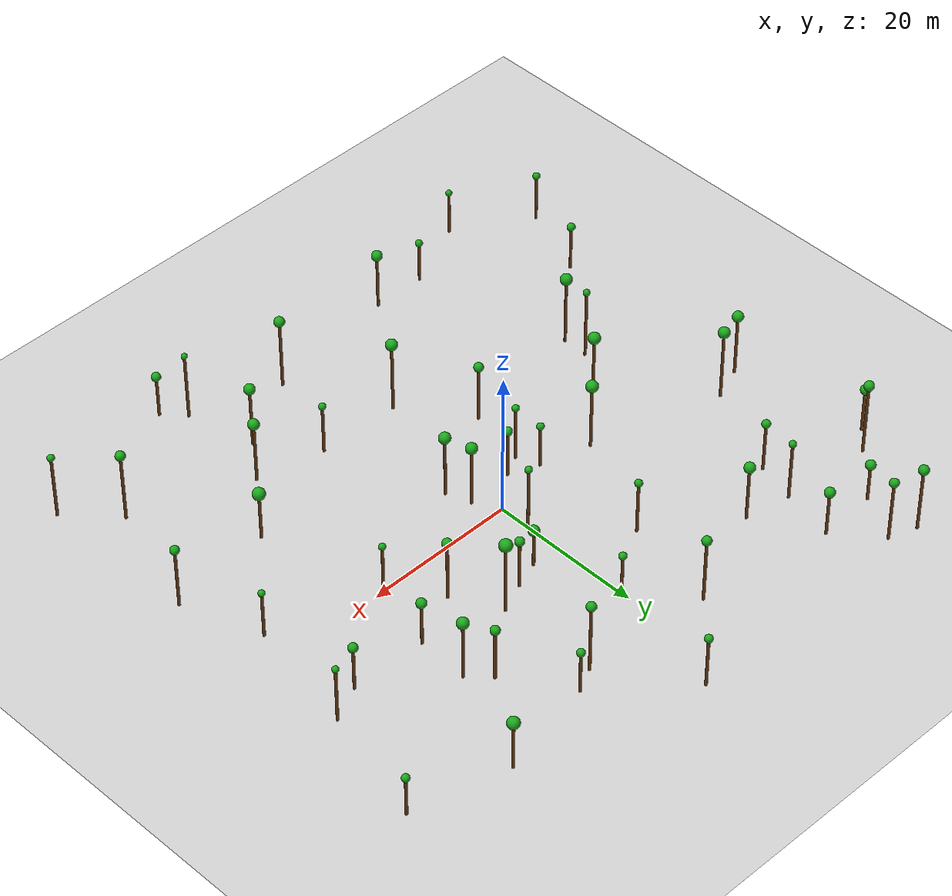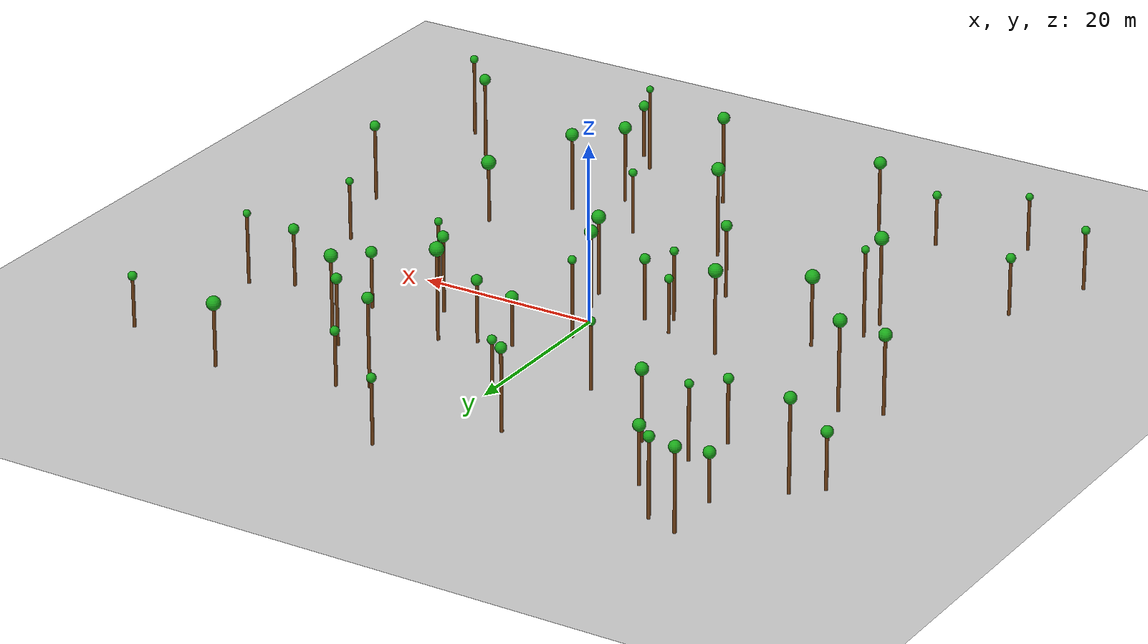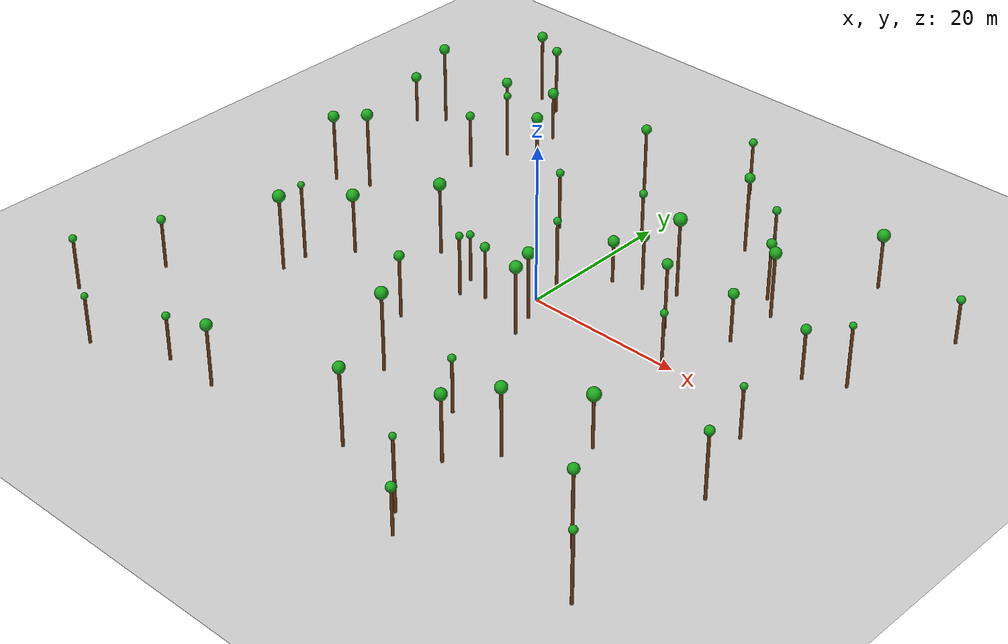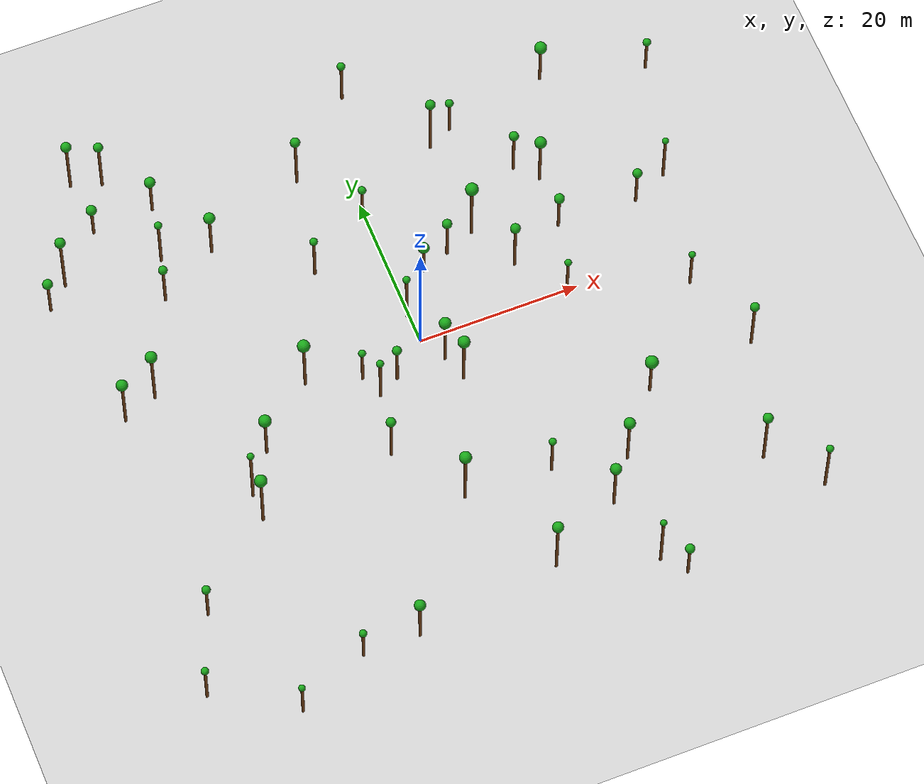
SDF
<sdf version="1.6">
 <world name="forest_world">
  <include><uri>model://sun</uri></include>
  <include><uri>model://ground_plane</uri></include>
  <model name="tree_343">
   <static>true</static>
   <link name="tree_link">
    <collision name="trunk_collision">
     <pose>21.54 15.48 4.08 0 0 0</pose>
     <geometry><cylinder><radius>0.18</radius><length>8.16</length></cylinder></geometry>
    </collision>
    <visual name="trunk_visual">
     <pose>21.54 15.48 4.08 0 0 0</pose>
     <geometry><cylinder><radius>0.18</radius><length>8.16</length></cylinder></geometry>
     <material><ambient>0.35 0.20 0.05 1</ambient><diffuse>0.45 0.25 0.08 1</diffuse></material>
    </visual>
    <visual name="leaf_visual">
     <pose>21.54 15.48 8.53 0 0 0</pose>
     <geometry><sphere><radius>0.73</radius></sphere></geometry>
     <material><ambient>0.05 0.45 0.05 1</ambient><diffuse>0.10 0.65 0.10 1</diffuse></material>
    </visual>
   </link>
  </model>
  <model name="tree_344">
   <static>true</static>
   <link name="tree_link">
    <collision name="trunk_collision">
     <pose>-22.31 -7.18 3.72 0 0 0</pose>
     <geometry><cylinder><radius>0.18</radius><length>7.44</length></cylinder></geometry>
    </collision>
    <visual name="trunk_visual">
     <pose>-22.31 -7.18 3.72 0 0 0</pose>
     <geometry><cylinder><radius>0.18</radius><length>7.44</length></cylinder></geometry>
     <material><ambient>0.35 0.20 0.05 1</ambient><diffuse>0.45 0.25 0.08 1</diffuse></material>
    </visual>
    <visual name="leaf_visual">
     <pose>-22.31 -7.18 7.82 0 0 0</pose>
     <geometry><sphere><radius>0.77</radius></sphere></geometry>
     <material><ambient>0.05 0.45 0.05 1</ambient><diffuse>0.10 0.65 0.10 1</diffuse></material>
    </visual>
   </link>
  </model>
  <model name="tree_345">
   <static>true</static>
   <link name="tree_link">
    <collision name="trunk_collision">
     <pose>-31.08 28.27 2.54 0 0 0</pose>
     <geometry><cylinder><radius>0.18</radius><length>5.08</length></cylinder></geometry>
    </collision>
    <visual name="trunk_visual">
     <pose>-31.08 28.27 2.54 0 0 0</pose>
     <geometry><cylinder><radius>0.18</radius><length>5.08</length></cylinder></geometry>
     <material><ambient>0.35 0.20 0.05 1</ambient><diffuse>0.45 0.25 0.08 1</diffuse></material>
    </visual>
    <visual name="leaf_visual">
     <pose>-31.08 28.27 5.40 0 0 0</pose>
     <geometry><sphere><radius>0.65</radius></sphere></geometry>
     <material><ambient>0.05 0.45 0.05 1</ambient><diffuse>0.10 0.65 0.10 1</diffuse></material>
    </visual>
   </link>
  </model>
  <model name="tree_346">
   <static>true</static>
   <link name="tree_link">
    <collision name="trunk_collision">
     <pose>35.62 10.44 3.91 0 0 0</pose>
     <geometry><cylinder><radius>0.18</radius><length>7.81</length></cylinder></geometry>
    </collision>
    <visual name="trunk_visual">
     <pose>35.62 10.44 3.91 0 0 0</pose>
     <geometry><cylinder><radius>0.18</radius><length>7.81</length></cylinder></geometry>
     <material><ambient>0.35 0.20 0.05 1</ambient><diffuse>0.45 0.25 0.08 1</diffuse></material>
    </visual>
    <visual name="leaf_visual">
     <pose>35.62 10.44 8.03 0 0 0</pose>
     <geometry><sphere><radius>0.42</radius></sphere></geometry>
     <material><ambient>0.05 0.45 0.05 1</ambient><diffuse>0.10 0.65 0.10 1</diffuse></material>
    </visual>
   </link>
  </model>
  <model name="tree_347">
   <static>true</static>
   <link name="tree_link">
    <collision name="trunk_collision">
     <pose>22.70 -16.14 3.25 0 0 0</pose>
     <geometry><cylinder><radius>0.18</radius><length>6.50</length></cylinder></geometry>
    </collision>
    <visual name="trunk_visual">
     <pose>22.70 -16.14 3.25 0 0 0</pose>
     <geometry><cylinder><radius>0.18</radius><length>6.50</length></cylinder></geometry>
     <material><ambient>0.35 0.20 0.05 1</ambient><diffuse>0.45 0.25 0.08 1</diffuse></material>
    </visual>
    <visual name="leaf_visual">
     <pose>22.70 -16.14 6.89 0 0 0</pose>
     <geometry><sphere><radius>0.80</radius></sphere></geometry>
     <material><ambient>0.05 0.45 0.05 1</ambient><diffuse>0.10 0.65 0.10 1</diffuse></material>
    </visual>
   </link>
  </model>
  <model name="tree_348">
   <static>true</static>
   <link name="tree_link">
    <collision name="trunk_collision">
     <pose>-14.33 -35.94 3.78 0 0 0</pose>
     <geometry><cylinder><radius>0.18</radius><length>7.56</length></cylinder></geometry>
    </collision>
    <visual name="trunk_visual">
     <pose>-14.33 -35.94 3.78 0 0 0</pose>
     <geometry><cylinder><radius>0.18</radius><length>7.56</length></cylinder></geometry>
     <material><ambient>0.35 0.20 0.05 1</ambient><diffuse>0.45 0.25 0.08 1</diffuse></material>
    </visual>
    <visual name="leaf_visual">
     <pose>-14.33 -35.94 7.91 0 0 0</pose>
     <geometry><sphere><radius>0.69</radius></sphere></geometry>
     <material><ambient>0.05 0.45 0.05 1</ambient><diffuse>0.10 0.65 0.10 1</diffuse></material>
    </visual>
   </link>
  </model>
  <model name="tree_349">
   <static>true</static>
   <link name="tree_link">
    <collision name="trunk_collision">
     <pose>15.20 -37.22 4.64 0 0 0</pose>
     <geometry><cylinder><radius>0.18</radius><length>9.28</length></cylinder></geometry>
    </collision>
    <visual name="trunk_visual">
     <pose>15.20 -37.22 4.64 0 0 0</pose>
     <geometry><cylinder><radius>0.18</radius><length>9.28</length></cylinder></geometry>
     <material><ambient>0.35 0.20 0.05 1</ambient><diffuse>0.45 0.25 0.08 1</diffuse></material>
    </visual>
    <visual name="leaf_visual">
     <pose>15.20 -37.22 9.48 0 0 0</pose>
     <geometry><sphere><radius>0.40</radius></sphere></geometry>
     <material><ambient>0.05 0.45 0.05 1</ambient><diffuse>0.10 0.65 0.10 1</diffuse></material>
    </visual>
   </link>
  </model>
  <model name="tree_350">
   <static>true</static>
   <link name="tree_link">
    <collision name="trunk_collision">
     <pose>-36.10 -24.43 3.10 0 0 0</pose>
     <geometry><cylinder><radius>0.18</radius><length>6.20</length></cylinder></geometry>
    </collision>
    <visual name="trunk_visual">
     <pose>-36.10 -24.43 3.10 0 0 0</pose>
     <geometry><cylinder><radius>0.18</radius><length>6.20</length></cylinder></geometry>
     <material><ambient>0.35 0.20 0.05 1</ambient><diffuse>0.45 0.25 0.08 1</diffuse></material>
    </visual>
    <visual name="leaf_visual">
     <pose>-36.10 -24.43 6.47 0 0 0</pose>
     <geometry><sphere><radius>0.53</radius></sphere></geometry>
     <material><ambient>0.05 0.45 0.05 1</ambient><diffuse>0.10 0.65 0.10 1</diffuse></material>
    </visual>
   </link>
  </model>
  <model name="tree_351">
   <static>true</static>
   <link name="tree_link">
    <collision name="trunk_collision">
     <pose>7.32 9.98 3.37 0 0 0</pose>
     <geometry><cylinder><radius>0.18</radius><length>6.74</length></cylinder></geometry>
    </collision>
    <visual name="trunk_visual">
     <pose>7.32 9.98 3.37 0 0 0</pose>
     <geometry><cylinder><radius>0.18</radius><length>6.74</length></cylinder></geometry>
     <material><ambient>0.35 0.20 0.05 1</ambient><diffuse>0.45 0.25 0.08 1</diffuse></material>
    </visual>
    <visual name="leaf_visual">
     <pose>7.32 9.98 7.04 0 0 0</pose>
     <geometry><sphere><radius>0.60</radius></sphere></geometry>
     <material><ambient>0.05 0.45 0.05 1</ambient><diffuse>0.10 0.65 0.10 1</diffuse></material>
    </visual>
   </link>
  </model>
  <model name="tree_352">
   <static>true</static>
   <link name="tree_link">
    <collision name="trunk_collision">
     <pose>16.74 -23.54 4.20 0 0 0</pose>
     <geometry><cylinder><radius>0.18</radius><length>8.40</length></cylinder></geometry>
    </collision>
    <visual name="trunk_visual">
     <pose>16.74 -23.54 4.20 0 0 0</pose>
     <geometry><cylinder><radius>0.18</radius><length>8.40</length></cylinder></geometry>
     <material><ambient>0.35 0.20 0.05 1</ambient><diffuse>0.45 0.25 0.08 1</diffuse></material>
    </visual>
    <visual name="leaf_visual">
     <pose>16.74 -23.54 8.76 0 0 0</pose>
     <geometry><sphere><radius>0.71</radius></sphere></geometry>
     <material><ambient>0.05 0.45 0.05 1</ambient><diffuse>0.10 0.65 0.10 1</diffuse></material>
    </visual>
   </link>
  </model>
  <model name="tree_353">
   <static>true</static>
   <link name="tree_link">
    <collision name="trunk_collision">
     <pose>-7.13 -5.10 3.82 0 0 0</pose>
     <geometry><cylinder><radius>0.18</radius><length>7.64</length></cylinder></geometry>
    </collision>
    <visual name="trunk_visual">
     <pose>-7.13 -5.10 3.82 0 0 0</pose>
     <geometry><cylinder><radius>0.18</radius><length>7.64</length></cylinder></geometry>
     <material><ambient>0.35 0.20 0.05 1</ambient><diffuse>0.45 0.25 0.08 1</diffuse></material>
    </visual>
    <visual name="leaf_visual">
     <pose>-7.13 -5.10 7.87 0 0 0</pose>
     <geometry><sphere><radius>0.46</radius></sphere></geometry>
     <material><ambient>0.05 0.45 0.05 1</ambient><diffuse>0.10 0.65 0.10 1</diffuse></material>
    </visual>
   </link>
  </model>
  <model name="tree_354">
   <static>true</static>
   <link name="tree_link">
    <collision name="trunk_collision">
     <pose>31.63 -29.34 4.76 0 0 0</pose>
     <geometry><cylinder><radius>0.18</radius><length>9.52</length></cylinder></geometry>
    </collision>
    <visual name="trunk_visual">
     <pose>31.63 -29.34 4.76 0 0 0</pose>
     <geometry><cylinder><radius>0.18</radius><length>9.52</length></cylinder></geometry>
     <material><ambient>0.35 0.20 0.05 1</ambient><diffuse>0.45 0.25 0.08 1</diffuse></material>
    </visual>
    <visual name="leaf_visual">
     <pose>31.63 -29.34 9.83 0 0 0</pose>
     <geometry><sphere><radius>0.63</radius></sphere></geometry>
     <material><ambient>0.05 0.45 0.05 1</ambient><diffuse>0.10 0.65 0.10 1</diffuse></material>
    </visual>
   </link>
  </model>
  <model name="tree_355">
   <static>true</static>
   <link name="tree_link">
    <collision name="trunk_collision">
     <pose>3.49 34.94 3.52 0 0 0</pose>
     <geometry><cylinder><radius>0.18</radius><length>7.04</length></cylinder></geometry>
    </collision>
    <visual name="trunk_visual">
     <pose>3.49 34.94 3.52 0 0 0</pose>
     <geometry><cylinder><radius>0.18</radius><length>7.04</length></cylinder></geometry>
     <material><ambient>0.35 0.20 0.05 1</ambient><diffuse>0.45 0.25 0.08 1</diffuse></material>
    </visual>
    <visual name="leaf_visual">
     <pose>3.49 34.94 7.30 0 0 0</pose>
     <geometry><sphere><radius>0.51</radius></sphere></geometry>
     <material><ambient>0.05 0.45 0.05 1</ambient><diffuse>0.10 0.65 0.10 1</diffuse></material>
    </visual>
   </link>
  </model>
  <model name="tree_356">
   <static>true</static>
   <link name="tree_link">
    <collision name="trunk_collision">
     <pose>-0.13 18.73 2.75 0 0 0</pose>
     <geometry><cylinder><radius>0.18</radius><length>5.50</length></cylinder></geometry>
    </collision>
    <visual name="trunk_visual">
     <pose>-0.13 18.73 2.75 0 0 0</pose>
     <geometry><cylinder><radius>0.18</radius><length>5.50</length></cylinder></geometry>
     <material><ambient>0.35 0.20 0.05 1</ambient><diffuse>0.45 0.25 0.08 1</diffuse></material>
    </visual>
    <visual name="leaf_visual">
     <pose>-0.13 18.73 5.75 0 0 0</pose>
     <geometry><sphere><radius>0.50</radius></sphere></geometry>
     <material><ambient>0.05 0.45 0.05 1</ambient><diffuse>0.10 0.65 0.10 1</diffuse></material>
    </visual>
   </link>
  </model>
  <model name="tree_357">
   <static>true</static>
   <link name="tree_link">
    <collision name="trunk_collision">
     <pose>3.85 8.78 2.57 0 0 0</pose>
     <geometry><cylinder><radius>0.18</radius><length>5.14</length></cylinder></geometry>
    </collision>
    <visual name="trunk_visual">
     <pose>3.85 8.78 2.57 0 0 0</pose>
     <geometry><cylinder><radius>0.18</radius><length>5.14</length></cylinder></geometry>
     <material><ambient>0.35 0.20 0.05 1</ambient><diffuse>0.45 0.25 0.08 1</diffuse></material>
    </visual>
    <visual name="leaf_visual">
     <pose>3.85 8.78 5.48 0 0 0</pose>
     <geometry><sphere><radius>0.69</radius></sphere></geometry>
     <material><ambient>0.05 0.45 0.05 1</ambient><diffuse>0.10 0.65 0.10 1</diffuse></material>
    </visual>
   </link>
  </model>
  <model name="tree_358">
   <static>true</static>
   <link name="tree_link">
    <collision name="trunk_collision">
     <pose>32.82 -4.48 3.26 0 0 0</pose>
     <geometry><cylinder><radius>0.18</radius><length>6.52</length></cylinder></geometry>
    </collision>
    <visual name="trunk_visual">
     <pose>32.82 -4.48 3.26 0 0 0</pose>
     <geometry><cylinder><radius>0.18</radius><length>6.52</length></cylinder></geometry>
     <material><ambient>0.35 0.20 0.05 1</ambient><diffuse>0.45 0.25 0.08 1</diffuse></material>
    </visual>
    <visual name="leaf_visual">
     <pose>32.82 -4.48 6.73 0 0 0</pose>
     <geometry><sphere><radius>0.42</radius></sphere></geometry>
     <material><ambient>0.05 0.45 0.05 1</ambient><diffuse>0.10 0.65 0.10 1</diffuse></material>
    </visual>
   </link>
  </model>
  <model name="tree_359">
   <static>true</static>
   <link name="tree_link">
    <collision name="trunk_collision">
     <pose>11.11 11.57 4.92 0 0 0</pose>
     <geometry><cylinder><radius>0.18</radius><length>9.84</length></cylinder></geometry>
    </collision>
    <visual name="trunk_visual">
     <pose>11.11 11.57 4.92 0 0 0</pose>
     <geometry><cylinder><radius>0.18</radius><length>9.84</length></cylinder></geometry>
     <material><ambient>0.35 0.20 0.05 1</ambient><diffuse>0.45 0.25 0.08 1</diffuse></material>
    </visual>
    <visual name="leaf_visual">
     <pose>11.11 11.57 10.24 0 0 0</pose>
     <geometry><sphere><radius>0.80</radius></sphere></geometry>
     <material><ambient>0.05 0.45 0.05 1</ambient><diffuse>0.10 0.65 0.10 1</diffuse></material>
    </visual>
   </link>
  </model>
  <model name="tree_360">
   <static>true</static>
   <link name="tree_link">
    <collision name="trunk_collision">
     <pose>19.15 18.03 3.62 0 0 0</pose>
     <geometry><cylinder><radius>0.18</radius><length>7.24</length></cylinder></geometry>
    </collision>
    <visual name="trunk_visual">
     <pose>19.15 18.03 3.62 0 0 0</pose>
     <geometry><cylinder><radius>0.18</radius><length>7.24</length></cylinder></geometry>
     <material><ambient>0.35 0.20 0.05 1</ambient><diffuse>0.45 0.25 0.08 1</diffuse></material>
    </visual>
    <visual name="leaf_visual">
     <pose>19.15 18.03 7.53 0 0 0</pose>
     <geometry><sphere><radius>0.59</radius></sphere></geometry>
     <material><ambient>0.05 0.45 0.05 1</ambient><diffuse>0.10 0.65 0.10 1</diffuse></material>
    </visual>
   </link>
  </model>
  <model name="tree_361">
   <static>true</static>
   <link name="tree_link">
    <collision name="trunk_collision">
     <pose>7.90 -21.64 3.40 0 0 0</pose>
     <geometry><cylinder><radius>0.18</radius><length>6.80</length></cylinder></geometry>
    </collision>
    <visual name="trunk_visual">
     <pose>7.90 -21.64 3.40 0 0 0</pose>
     <geometry><cylinder><radius>0.18</radius><length>6.80</length></cylinder></geometry>
     <material><ambient>0.35 0.20 0.05 1</ambient><diffuse>0.45 0.25 0.08 1</diffuse></material>
    </visual>
    <visual name="leaf_visual">
     <pose>7.90 -21.64 7.03 0 0 0</pose>
     <geometry><sphere><radius>0.46</radius></sphere></geometry>
     <material><ambient>0.05 0.45 0.05 1</ambient><diffuse>0.10 0.65 0.10 1</diffuse></material>
    </visual>
   </link>
  </model>
  <model name="tree_362">
   <static>true</static>
   <link name="tree_link">
    <collision name="trunk_collision">
     <pose>-25.82 -11.90 4.82 0 0 0</pose>
     <geometry><cylinder><radius>0.18</radius><length>9.64</length></cylinder></geometry>
    </collision>
    <visual name="trunk_visual">
     <pose>-25.82 -11.90 4.82 0 0 0</pose>
     <geometry><cylinder><radius>0.18</radius><length>9.64</length></cylinder></geometry>
     <material><ambient>0.35 0.20 0.05 1</ambient><diffuse>0.45 0.25 0.08 1</diffuse></material>
    </visual>
    <visual name="leaf_visual">
     <pose>-25.82 -11.90 9.85 0 0 0</pose>
     <geometry><sphere><radius>0.43</radius></sphere></geometry>
     <material><ambient>0.05 0.45 0.05 1</ambient><diffuse>0.10 0.65 0.10 1</diffuse></material>
    </visual>
   </link>
  </model>
  <model name="tree_363">
   <static>true</static>
   <link name="tree_link">
    <collision name="trunk_collision">
     <pose>13.00 -28.40 4.13 0 0 0</pose>
     <geometry><cylinder><radius>0.18</radius><length>8.27</length></cylinder></geometry>
    </collision>
    <visual name="trunk_visual">
     <pose>13.00 -28.40 4.13 0 0 0</pose>
     <geometry><cylinder><radius>0.18</radius><length>8.27</length></cylinder></geometry>
     <material><ambient>0.35 0.20 0.05 1</ambient><diffuse>0.45 0.25 0.08 1</diffuse></material>
    </visual>
    <visual name="leaf_visual">
     <pose>13.00 -28.40 8.62 0 0 0</pose>
     <geometry><sphere><radius>0.70</radius></sphere></geometry>
     <material><ambient>0.05 0.45 0.05 1</ambient><diffuse>0.10 0.65 0.10 1</diffuse></material>
    </visual>
   </link>
  </model>
  <model name="tree_364">
   <static>true</static>
   <link name="tree_link">
    <collision name="trunk_collision">
     <pose>-0.30 3.79 4.25 0 0 0</pose>
     <geometry><cylinder><radius>0.18</radius><length>8.49</length></cylinder></geometry>
    </collision>
    <visual name="trunk_visual">
     <pose>-0.30 3.79 4.25 0 0 0</pose>
     <geometry><cylinder><radius>0.18</radius><length>8.49</length></cylinder></geometry>
     <material><ambient>0.35 0.20 0.05 1</ambient><diffuse>0.45 0.25 0.08 1</diffuse></material>
    </visual>
    <visual name="leaf_visual">
     <pose>-0.30 3.79 8.72 0 0 0</pose>
     <geometry><sphere><radius>0.46</radius></sphere></geometry>
     <material><ambient>0.05 0.45 0.05 1</ambient><diffuse>0.10 0.65 0.10 1</diffuse></material>
    </visual>
   </link>
  </model>
  <model name="tree_365">
   <static>true</static>
   <link name="tree_link">
    <collision name="trunk_collision">
     <pose>-4.47 -3.71 3.31 0 0 0</pose>
     <geometry><cylinder><radius>0.18</radius><length>6.61</length></cylinder></geometry>
    </collision>
    <visual name="trunk_visual">
     <pose>-4.47 -3.71 3.31 0 0 0</pose>
     <geometry><cylinder><radius>0.18</radius><length>6.61</length></cylinder></geometry>
     <material><ambient>0.35 0.20 0.05 1</ambient><diffuse>0.45 0.25 0.08 1</diffuse></material>
    </visual>
    <visual name="leaf_visual">
     <pose>-4.47 -3.71 6.90 0 0 0</pose>
     <geometry><sphere><radius>0.57</radius></sphere></geometry>
     <material><ambient>0.05 0.45 0.05 1</ambient><diffuse>0.10 0.65 0.10 1</diffuse></material>
    </visual>
   </link>
  </model>
  <model name="tree_366">
   <static>true</static>
   <link name="tree_link">
    <collision name="trunk_collision">
     <pose>-27.86 34.20 4.26 0 0 0</pose>
     <geometry><cylinder><radius>0.18</radius><length>8.51</length></cylinder></geometry>
    </collision>
    <visual name="trunk_visual">
     <pose>-27.86 34.20 4.26 0 0 0</pose>
     <geometry><cylinder><radius>0.18</radius><length>8.51</length></cylinder></geometry>
     <material><ambient>0.35 0.20 0.05 1</ambient><diffuse>0.45 0.25 0.08 1</diffuse></material>
    </visual>
    <visual name="leaf_visual">
     <pose>-27.86 34.20 8.80 0 0 0</pose>
     <geometry><sphere><radius>0.59</radius></sphere></geometry>
     <material><ambient>0.05 0.45 0.05 1</ambient><diffuse>0.10 0.65 0.10 1</diffuse></material>
    </visual>
   </link>
  </model>
  <model name="tree_367">
   <static>true</static>
   <link name="tree_link">
    <collision name="trunk_collision">
     <pose>36.38 -14.68 4.17 0 0 0</pose>
     <geometry><cylinder><radius>0.18</radius><length>8.34</length></cylinder></geometry>
    </collision>
    <visual name="trunk_visual">
     <pose>36.38 -14.68 4.17 0 0 0</pose>
     <geometry><cylinder><radius>0.18</radius><length>8.34</length></cylinder></geometry>
     <material><ambient>0.35 0.20 0.05 1</ambient><diffuse>0.45 0.25 0.08 1</diffuse></material>
    </visual>
    <visual name="leaf_visual">
     <pose>36.38 -14.68 8.63 0 0 0</pose>
     <geometry><sphere><radius>0.57</radius></sphere></geometry>
     <material><ambient>0.05 0.45 0.05 1</ambient><diffuse>0.10 0.65 0.10 1</diffuse></material>
    </visual>
   </link>
  </model>
  <model name="tree_368">
   <static>true</static>
   <link name="tree_link">
    <collision name="trunk_collision">
     <pose>-14.85 -0.37 4.50 0 0 0</pose>
     <geometry><cylinder><radius>0.18</radius><length>8.99</length></cylinder></geometry>
    </collision>
    <visual name="trunk_visual">
     <pose>-14.85 -0.37 4.50 0 0 0</pose>
     <geometry><cylinder><radius>0.18</radius><length>8.99</length></cylinder></geometry>
     <material><ambient>0.35 0.20 0.05 1</ambient><diffuse>0.45 0.25 0.08 1</diffuse></material>
    </visual>
    <visual name="leaf_visual">
     <pose>-14.85 -0.37 9.38 0 0 0</pose>
     <geometry><sphere><radius>0.77</radius></sphere></geometry>
     <material><ambient>0.05 0.45 0.05 1</ambient><diffuse>0.10 0.65 0.10 1</diffuse></material>
    </visual>
   </link>
  </model>
  <model name="tree_369">
   <static>true</static>
   <link name="tree_link">
    <collision name="trunk_collision">
     <pose>13.98 25.95 2.94 0 0 0</pose>
     <geometry><cylinder><radius>0.18</radius><length>5.88</length></cylinder></geometry>
    </collision>
    <visual name="trunk_visual">
     <pose>13.98 25.95 2.94 0 0 0</pose>
     <geometry><cylinder><radius>0.18</radius><length>5.88</length></cylinder></geometry>
     <material><ambient>0.35 0.20 0.05 1</ambient><diffuse>0.45 0.25 0.08 1</diffuse></material>
    </visual>
    <visual name="leaf_visual">
     <pose>13.98 25.95 6.13 0 0 0</pose>
     <geometry><sphere><radius>0.51</radius></sphere></geometry>
     <material><ambient>0.05 0.45 0.05 1</ambient><diffuse>0.10 0.65 0.10 1</diffuse></material>
    </visual>
   </link>
  </model>
  <model name="tree_370">
   <static>true</static>
   <link name="tree_link">
    <collision name="trunk_collision">
     <pose>-24.86 21.69 4.08 0 0 0</pose>
     <geometry><cylinder><radius>0.18</radius><length>8.15</length></cylinder></geometry>
    </collision>
    <visual name="trunk_visual">
     <pose>-24.86 21.69 4.08 0 0 0</pose>
     <geometry><cylinder><radius>0.18</radius><length>8.15</length></cylinder></geometry>
     <material><ambient>0.35 0.20 0.05 1</ambient><diffuse>0.45 0.25 0.08 1</diffuse></material>
    </visual>
    <visual name="leaf_visual">
     <pose>-24.86 21.69 8.39 0 0 0</pose>
     <geometry><sphere><radius>0.47</radius></sphere></geometry>
     <material><ambient>0.05 0.45 0.05 1</ambient><diffuse>0.10 0.65 0.10 1</diffuse></material>
    </visual>
   </link>
  </model>
  <model name="tree_371">
   <static>true</static>
   <link name="tree_link">
    <collision name="trunk_collision">
     <pose>14.28 5.60 4.12 0 0 0</pose>
     <geometry><cylinder><radius>0.18</radius><length>8.25</length></cylinder></geometry>
    </collision>
    <visual name="trunk_visual">
     <pose>14.28 5.60 4.12 0 0 0</pose>
     <geometry><cylinder><radius>0.18</radius><length>8.25</length></cylinder></geometry>
     <material><ambient>0.35 0.20 0.05 1</ambient><diffuse>0.45 0.25 0.08 1</diffuse></material>
    </visual>
    <visual name="leaf_visual">
     <pose>14.28 5.60 8.56 0 0 0</pose>
     <geometry><sphere><radius>0.63</radius></sphere></geometry>
     <material><ambient>0.05 0.45 0.05 1</ambient><diffuse>0.10 0.65 0.10 1</diffuse></material>
    </visual>
   </link>
  </model>
  <model name="tree_372">
   <static>true</static>
   <link name="tree_link">
    <collision name="trunk_collision">
     <pose>-26.25 16.46 3.43 0 0 0</pose>
     <geometry><cylinder><radius>0.18</radius><length>6.87</length></cylinder></geometry>
    </collision>
    <visual name="trunk_visual">
     <pose>-26.25 16.46 3.43 0 0 0</pose>
     <geometry><cylinder><radius>0.18</radius><length>6.87</length></cylinder></geometry>
     <material><ambient>0.35 0.20 0.05 1</ambient><diffuse>0.45 0.25 0.08 1</diffuse></material>
    </visual>
    <visual name="leaf_visual">
     <pose>-26.25 16.46 7.14 0 0 0</pose>
     <geometry><sphere><radius>0.55</radius></sphere></geometry>
     <material><ambient>0.05 0.45 0.05 1</ambient><diffuse>0.10 0.65 0.10 1</diffuse></material>
    </visual>
   </link>
  </model>
  <model name="tree_373">
   <static>true</static>
   <link name="tree_link">
    <collision name="trunk_collision">
     <pose>1.78 -3.27 4.15 0 0 0</pose>
     <geometry><cylinder><radius>0.18</radius><length>8.30</length></cylinder></geometry>
    </collision>
    <visual name="trunk_visual">
     <pose>1.78 -3.27 4.15 0 0 0</pose>
     <geometry><cylinder><radius>0.18</radius><length>8.30</length></cylinder></geometry>
     <material><ambient>0.35 0.20 0.05 1</ambient><diffuse>0.45 0.25 0.08 1</diffuse></material>
    </visual>
    <visual name="leaf_visual">
     <pose>1.78 -3.27 8.66 0 0 0</pose>
     <geometry><sphere><radius>0.73</radius></sphere></geometry>
     <material><ambient>0.05 0.45 0.05 1</ambient><diffuse>0.10 0.65 0.10 1</diffuse></material>
    </visual>
   </link>
  </model>
  <model name="tree_374">
   <static>true</static>
   <link name="tree_link">
    <collision name="trunk_collision">
     <pose>-36.27 2.84 4.24 0 0 0</pose>
     <geometry><cylinder><radius>0.18</radius><length>8.48</length></cylinder></geometry>
    </collision>
    <visual name="trunk_visual">
     <pose>-36.27 2.84 4.24 0 0 0</pose>
     <geometry><cylinder><radius>0.18</radius><length>8.48</length></cylinder></geometry>
     <material><ambient>0.35 0.20 0.05 1</ambient><diffuse>0.45 0.25 0.08 1</diffuse></material>
    </visual>
    <visual name="leaf_visual">
     <pose>-36.27 2.84 8.83 0 0 0</pose>
     <geometry><sphere><radius>0.71</radius></sphere></geometry>
     <material><ambient>0.05 0.45 0.05 1</ambient><diffuse>0.10 0.65 0.10 1</diffuse></material>
    </visual>
   </link>
  </model>
  <model name="tree_375">
   <static>true</static>
   <link name="tree_link">
    <collision name="trunk_collision">
     <pose>-2.87 -21.27 4.83 0 0 0</pose>
     <geometry><cylinder><radius>0.18</radius><length>9.67</length></cylinder></geometry>
    </collision>
    <visual name="trunk_visual">
     <pose>-2.87 -21.27 4.83 0 0 0</pose>
     <geometry><cylinder><radius>0.18</radius><length>9.67</length></cylinder></geometry>
     <material><ambient>0.35 0.20 0.05 1</ambient><diffuse>0.45 0.25 0.08 1</diffuse></material>
    </visual>
    <visual name="leaf_visual">
     <pose>-2.87 -21.27 10.04 0 0 0</pose>
     <geometry><sphere><radius>0.75</radius></sphere></geometry>
     <material><ambient>0.05 0.45 0.05 1</ambient><diffuse>0.10 0.65 0.10 1</diffuse></material>
    </visual>
   </link>
  </model>
  <model name="tree_376">
   <static>true</static>
   <link name="tree_link">
    <collision name="trunk_collision">
     <pose>-21.30 -35.90 2.77 0 0 0</pose>
     <geometry><cylinder><radius>0.18</radius><length>5.55</length></cylinder></geometry>
    </collision>
    <visual name="trunk_visual">
     <pose>-21.30 -35.90 2.77 0 0 0</pose>
     <geometry><cylinder><radius>0.18</radius><length>5.55</length></cylinder></geometry>
     <material><ambient>0.35 0.20 0.05 1</ambient><diffuse>0.45 0.25 0.08 1</diffuse></material>
    </visual>
    <visual name="leaf_visual">
     <pose>-21.30 -35.90 5.78 0 0 0</pose>
     <geometry><sphere><radius>0.47</radius></sphere></geometry>
     <material><ambient>0.05 0.45 0.05 1</ambient><diffuse>0.10 0.65 0.10 1</diffuse></material>
    </visual>
   </link>
  </model>
  <model name="tree_377">
   <static>true</static>
   <link name="tree_link">
    <collision name="trunk_collision">
     <pose>3.64 -33.50 4.83 0 0 0</pose>
     <geometry><cylinder><radius>0.18</radius><length>9.65</length></cylinder></geometry>
    </collision>
    <visual name="trunk_visual">
     <pose>3.64 -33.50 4.83 0 0 0</pose>
     <geometry><cylinder><radius>0.18</radius><length>9.65</length></cylinder></geometry>
     <material><ambient>0.35 0.20 0.05 1</ambient><diffuse>0.45 0.25 0.08 1</diffuse></material>
    </visual>
    <visual name="leaf_visual">
     <pose>3.64 -33.50 9.99 0 0 0</pose>
     <geometry><sphere><radius>0.68</radius></sphere></geometry>
     <material><ambient>0.05 0.45 0.05 1</ambient><diffuse>0.10 0.65 0.10 1</diffuse></material>
    </visual>
   </link>
  </model>
  <model name="tree_378">
   <static>true</static>
   <link name="tree_link">
    <collision name="trunk_collision">
     <pose>-8.82 -12.88 3.92 0 0 0</pose>
     <geometry><cylinder><radius>0.18</radius><length>7.84</length></cylinder></geometry>
    </collision>
    <visual name="trunk_visual">
     <pose>-8.82 -12.88 3.92 0 0 0</pose>
     <geometry><cylinder><radius>0.18</radius><length>7.84</length></cylinder></geometry>
     <material><ambient>0.35 0.20 0.05 1</ambient><diffuse>0.45 0.25 0.08 1</diffuse></material>
    </visual>
    <visual name="leaf_visual">
     <pose>-8.82 -12.88 8.14 0 0 0</pose>
     <geometry><sphere><radius>0.60</radius></sphere></geometry>
     <material><ambient>0.05 0.45 0.05 1</ambient><diffuse>0.10 0.65 0.10 1</diffuse></material>
    </visual>
   </link>
  </model>
  <model name="tree_379">
   <static>true</static>
   <link name="tree_link">
    <collision name="trunk_collision">
     <pose>17.53 -39.85 2.87 0 0 0</pose>
     <geometry><cylinder><radius>0.18</radius><length>5.75</length></cylinder></geometry>
    </collision>
    <visual name="trunk_visual">
     <pose>17.53 -39.85 2.87 0 0 0</pose>
     <geometry><cylinder><radius>0.18</radius><length>5.75</length></cylinder></geometry>
     <material><ambient>0.35 0.20 0.05 1</ambient><diffuse>0.45 0.25 0.08 1</diffuse></material>
    </visual>
    <visual name="leaf_visual">
     <pose>17.53 -39.85 6.04 0 0 0</pose>
     <geometry><sphere><radius>0.58</radius></sphere></geometry>
     <material><ambient>0.05 0.45 0.05 1</ambient><diffuse>0.10 0.65 0.10 1</diffuse></material>
    </visual>
   </link>
  </model>
  <model name="tree_380">
   <static>true</static>
   <link name="tree_link">
    <collision name="trunk_collision">
     <pose>-32.00 4.48 4.82 0 0 0</pose>
     <geometry><cylinder><radius>0.18</radius><length>9.65</length></cylinder></geometry>
    </collision>
    <visual name="trunk_visual">
     <pose>-32.00 4.48 4.82 0 0 0</pose>
     <geometry><cylinder><radius>0.18</radius><length>9.65</length></cylinder></geometry>
     <material><ambient>0.35 0.20 0.05 1</ambient><diffuse>0.45 0.25 0.08 1</diffuse></material>
    </visual>
    <visual name="leaf_visual">
     <pose>-32.00 4.48 10.01 0 0 0</pose>
     <geometry><sphere><radius>0.73</radius></sphere></geometry>
     <material><ambient>0.05 0.45 0.05 1</ambient><diffuse>0.10 0.65 0.10 1</diffuse></material>
    </visual>
   </link>
  </model>
  <model name="tree_381">
   <static>true</static>
   <link name="tree_link">
    <collision name="trunk_collision">
     <pose>-36.73 22.66 5.00 0 0 0</pose>
     <geometry><cylinder><radius>0.18</radius><length>10.00</length></cylinder></geometry>
    </collision>
    <visual name="trunk_visual">
     <pose>-36.73 22.66 5.00 0 0 0</pose>
     <geometry><cylinder><radius>0.18</radius><length>10.00</length></cylinder></geometry>
     <material><ambient>0.35 0.20 0.05 1</ambient><diffuse>0.45 0.25 0.08 1</diffuse></material>
    </visual>
    <visual name="leaf_visual">
     <pose>-36.73 22.66 10.32 0 0 0</pose>
     <geometry><sphere><radius>0.65</radius></sphere></geometry>
     <material><ambient>0.05 0.45 0.05 1</ambient><diffuse>0.10 0.65 0.10 1</diffuse></material>
    </visual>
   </link>
  </model>
  <model name="tree_382">
   <static>true</static>
   <link name="tree_link">
    <collision name="trunk_collision">
     <pose>31.17 8.37 3.10 0 0 0</pose>
     <geometry><cylinder><radius>0.18</radius><length>6.19</length></cylinder></geometry>
    </collision>
    <visual name="trunk_visual">
     <pose>31.17 8.37 3.10 0 0 0</pose>
     <geometry><cylinder><radius>0.18</radius><length>6.19</length></cylinder></geometry>
     <material><ambient>0.35 0.20 0.05 1</ambient><diffuse>0.45 0.25 0.08 1</diffuse></material>
    </visual>
    <visual name="leaf_visual">
     <pose>31.17 8.37 6.49 0 0 0</pose>
     <geometry><sphere><radius>0.59</radius></sphere></geometry>
     <material><ambient>0.05 0.45 0.05 1</ambient><diffuse>0.10 0.65 0.10 1</diffuse></material>
    </visual>
   </link>
  </model>
  <model name="tree_383">
   <static>true</static>
   <link name="tree_link">
    <collision name="trunk_collision">
     <pose>-5.85 25.92 4.46 0 0 0</pose>
     <geometry><cylinder><radius>0.18</radius><length>8.92</length></cylinder></geometry>
    </collision>
    <visual name="trunk_visual">
     <pose>-5.85 25.92 4.46 0 0 0</pose>
     <geometry><cylinder><radius>0.18</radius><length>8.92</length></cylinder></geometry>
     <material><ambient>0.35 0.20 0.05 1</ambient><diffuse>0.45 0.25 0.08 1</diffuse></material>
    </visual>
    <visual name="leaf_visual">
     <pose>-5.85 25.92 9.22 0 0 0</pose>
     <geometry><sphere><radius>0.61</radius></sphere></geometry>
     <material><ambient>0.05 0.45 0.05 1</ambient><diffuse>0.10 0.65 0.10 1</diffuse></material>
    </visual>
   </link>
  </model>
  <model name="tree_384">
   <static>true</static>
   <link name="tree_link">
    <collision name="trunk_collision">
     <pose>39.56 25.34 2.77 0 0 0</pose>
     <geometry><cylinder><radius>0.18</radius><length>5.53</length></cylinder></geometry>
    </collision>
    <visual name="trunk_visual">
     <pose>39.56 25.34 2.77 0 0 0</pose>
     <geometry><cylinder><radius>0.18</radius><length>5.53</length></cylinder></geometry>
     <material><ambient>0.35 0.20 0.05 1</ambient><diffuse>0.45 0.25 0.08 1</diffuse></material>
    </visual>
    <visual name="leaf_visual">
     <pose>39.56 25.34 5.78 0 0 0</pose>
     <geometry><sphere><radius>0.50</radius></sphere></geometry>
     <material><ambient>0.05 0.45 0.05 1</ambient><diffuse>0.10 0.65 0.10 1</diffuse></material>
    </visual>
   </link>
  </model>
  <model name="tree_385">
   <static>true</static>
   <link name="tree_link">
    <collision name="trunk_collision">
     <pose>-31.48 35.42 4.42 0 0 0</pose>
     <geometry><cylinder><radius>0.18</radius><length>8.85</length></cylinder></geometry>
    </collision>
    <visual name="trunk_visual">
     <pose>-31.48 35.42 4.42 0 0 0</pose>
     <geometry><cylinder><radius>0.18</radius><length>8.85</length></cylinder></geometry>
     <material><ambient>0.35 0.20 0.05 1</ambient><diffuse>0.45 0.25 0.08 1</diffuse></material>
    </visual>
    <visual name="leaf_visual">
     <pose>-31.48 35.42 9.18 0 0 0</pose>
     <geometry><sphere><radius>0.65</radius></sphere></geometry>
     <material><ambient>0.05 0.45 0.05 1</ambient><diffuse>0.10 0.65 0.10 1</diffuse></material>
    </visual>
   </link>
  </model>
  <model name="tree_386">
   <static>true</static>
   <link name="tree_link">
    <collision name="trunk_collision">
     <pose>-25.84 -15.29 4.72 0 0 0</pose>
     <geometry><cylinder><radius>0.18</radius><length>9.44</length></cylinder></geometry>
    </collision>
    <visual name="trunk_visual">
     <pose>-25.84 -15.29 4.72 0 0 0</pose>
     <geometry><cylinder><radius>0.18</radius><length>9.44</length></cylinder></geometry>
     <material><ambient>0.35 0.20 0.05 1</ambient><diffuse>0.45 0.25 0.08 1</diffuse></material>
    </visual>
    <visual name="leaf_visual">
     <pose>-25.84 -15.29 9.82 0 0 0</pose>
     <geometry><sphere><radius>0.76</radius></sphere></geometry>
     <material><ambient>0.05 0.45 0.05 1</ambient><diffuse>0.10 0.65 0.10 1</diffuse></material>
    </visual>
   </link>
  </model>
  <model name="tree_387">
   <static>true</static>
   <link name="tree_link">
    <collision name="trunk_collision">
     <pose>10.92 24.44 4.81 0 0 0</pose>
     <geometry><cylinder><radius>0.18</radius><length>9.62</length></cylinder></geometry>
    </collision>
    <visual name="trunk_visual">
     <pose>10.92 24.44 4.81 0 0 0</pose>
     <geometry><cylinder><radius>0.18</radius><length>9.62</length></cylinder></geometry>
     <material><ambient>0.35 0.20 0.05 1</ambient><diffuse>0.45 0.25 0.08 1</diffuse></material>
    </visual>
    <visual name="leaf_visual">
     <pose>10.92 24.44 9.93 0 0 0</pose>
     <geometry><sphere><radius>0.62</radius></sphere></geometry>
     <material><ambient>0.05 0.45 0.05 1</ambient><diffuse>0.10 0.65 0.10 1</diffuse></material>
    </visual>
   </link>
  </model>
  <model name="tree_388">
   <static>true</static>
   <link name="tree_link">
    <collision name="trunk_collision">
     <pose>-39.84 -34.11 3.26 0 0 0</pose>
     <geometry><cylinder><radius>0.18</radius><length>6.51</length></cylinder></geometry>
    </collision>
    <visual name="trunk_visual">
     <pose>-39.84 -34.11 3.26 0 0 0</pose>
     <geometry><cylinder><radius>0.18</radius><length>6.51</length></cylinder></geometry>
     <material><ambient>0.35 0.20 0.05 1</ambient><diffuse>0.45 0.25 0.08 1</diffuse></material>
    </visual>
    <visual name="leaf_visual">
     <pose>-39.84 -34.11 6.75 0 0 0</pose>
     <geometry><sphere><radius>0.47</radius></sphere></geometry>
     <material><ambient>0.05 0.45 0.05 1</ambient><diffuse>0.10 0.65 0.10 1</diffuse></material>
    </visual>
   </link>
  </model>
  <model name="tree_389">
   <static>true</static>
   <link name="tree_link">
    <collision name="trunk_collision">
     <pose>21.20 8.65 3.01 0 0 0</pose>
     <geometry><cylinder><radius>0.18</radius><length>6.03</length></cylinder></geometry>
    </collision>
    <visual name="trunk_visual">
     <pose>21.20 8.65 3.01 0 0 0</pose>
     <geometry><cylinder><radius>0.18</radius><length>6.03</length></cylinder></geometry>
     <material><ambient>0.35 0.20 0.05 1</ambient><diffuse>0.45 0.25 0.08 1</diffuse></material>
    </visual>
    <visual name="leaf_visual">
     <pose>21.20 8.65 6.34 0 0 0</pose>
     <geometry><sphere><radius>0.63</radius></sphere></geometry>
     <material><ambient>0.05 0.45 0.05 1</ambient><diffuse>0.10 0.65 0.10 1</diffuse></material>
    </visual>
   </link>
  </model>
  <model name="tree_390">
   <static>true</static>
   <link name="tree_link">
    <collision name="trunk_collision">
     <pose>36.90 -35.28 4.40 0 0 0</pose>
     <geometry><cylinder><radius>0.18</radius><length>8.80</length></cylinder></geometry>
    </collision>
    <visual name="trunk_visual">
     <pose>36.90 -35.28 4.40 0 0 0</pose>
     <geometry><cylinder><radius>0.18</radius><length>8.80</length></cylinder></geometry>
     <material><ambient>0.35 0.20 0.05 1</ambient><diffuse>0.45 0.25 0.08 1</diffuse></material>
    </visual>
    <visual name="leaf_visual">
     <pose>36.90 -35.28 9.03 0 0 0</pose>
     <geometry><sphere><radius>0.46</radius></sphere></geometry>
     <material><ambient>0.05 0.45 0.05 1</ambient><diffuse>0.10 0.65 0.10 1</diffuse></material>
    </visual>
   </link>
  </model>
  <model name="tree_391">
   <static>true</static>
   <link name="tree_link">
    <collision name="trunk_collision">
     <pose>-8.27 -2.18 2.97 0 0 0</pose>
     <geometry><cylinder><radius>0.18</radius><length>5.94</length></cylinder></geometry>
    </collision>
    <visual name="trunk_visual">
     <pose>-8.27 -2.18 2.97 0 0 0</pose>
     <geometry><cylinder><radius>0.18</radius><length>5.94</length></cylinder></geometry>
     <material><ambient>0.35 0.20 0.05 1</ambient><diffuse>0.45 0.25 0.08 1</diffuse></material>
    </visual>
    <visual name="leaf_visual">
     <pose>-8.27 -2.18 6.18 0 0 0</pose>
     <geometry><sphere><radius>0.47</radius></sphere></geometry>
     <material><ambient>0.05 0.45 0.05 1</ambient><diffuse>0.10 0.65 0.10 1</diffuse></material>
    </visual>
   </link>
  </model>
  <model name="tree_392">
   <static>true</static>
   <link name="tree_link">
    <collision name="trunk_collision">
     <pose>26.95 28.62 3.35 0 0 0</pose>
     <geometry><cylinder><radius>0.18</radius><length>6.70</length></cylinder></geometry>
    </collision>
    <visual name="trunk_visual">
     <pose>26.95 28.62 3.35 0 0 0</pose>
     <geometry><cylinder><radius>0.18</radius><length>6.70</length></cylinder></geometry>
     <material><ambient>0.35 0.20 0.05 1</ambient><diffuse>0.45 0.25 0.08 1</diffuse></material>
    </visual>
    <visual name="leaf_visual">
     <pose>26.95 28.62 7.08 0 0 0</pose>
     <geometry><sphere><radius>0.77</radius></sphere></geometry>
     <material><ambient>0.05 0.45 0.05 1</ambient><diffuse>0.10 0.65 0.10 1</diffuse></material>
    </visual>
   </link>
  </model>
  <model name="tree_393">
   <static>true</static>
   <link name="tree_link">
    <collision name="trunk_collision">
     <pose>-18.82 20.60 3.83 0 0 0</pose>
     <geometry><cylinder><radius>0.18</radius><length>7.66</length></cylinder></geometry>
    </collision>
    <visual name="trunk_visual">
     <pose>-18.82 20.60 3.83 0 0 0</pose>
     <geometry><cylinder><radius>0.18</radius><length>7.66</length></cylinder></geometry>
     <material><ambient>0.35 0.20 0.05 1</ambient><diffuse>0.45 0.25 0.08 1</diffuse></material>
    </visual>
    <visual name="leaf_visual">
     <pose>-18.82 20.60 8.01 0 0 0</pose>
     <geometry><sphere><radius>0.70</radius></sphere></geometry>
     <material><ambient>0.05 0.45 0.05 1</ambient><diffuse>0.10 0.65 0.10 1</diffuse></material>
    </visual>
   </link>
  </model>
  <model name="tree_394">
   <static>true</static>
   <link name="tree_link">
    <collision name="trunk_collision">
     <pose>18.68 -0.20 3.39 0 0 0</pose>
     <geometry><cylinder><radius>0.18</radius><length>6.79</length></cylinder></geometry>
    </collision>
    <visual name="trunk_visual">
     <pose>18.68 -0.20 3.39 0 0 0</pose>
     <geometry><cylinder><radius>0.18</radius><length>6.79</length></cylinder></geometry>
     <material><ambient>0.35 0.20 0.05 1</ambient><diffuse>0.45 0.25 0.08 1</diffuse></material>
    </visual>
    <visual name="leaf_visual">
     <pose>18.68 -0.20 7.01 0 0 0</pose>
     <geometry><sphere><radius>0.44</radius></sphere></geometry>
     <material><ambient>0.05 0.45 0.05 1</ambient><diffuse>0.10 0.65 0.10 1</diffuse></material>
    </visual>
   </link>
  </model>
  <model name="tree_395">
   <static>true</static>
   <link name="tree_link">
    <collision name="trunk_collision">
     <pose>2.87 -6.51 4.23 0 0 0</pose>
     <geometry><cylinder><radius>0.18</radius><length>8.45</length></cylinder></geometry>
    </collision>
    <visual name="trunk_visual">
     <pose>2.87 -6.51 4.23 0 0 0</pose>
     <geometry><cylinder><radius>0.18</radius><length>8.45</length></cylinder></geometry>
     <material><ambient>0.35 0.20 0.05 1</ambient><diffuse>0.45 0.25 0.08 1</diffuse></material>
    </visual>
    <visual name="leaf_visual">
     <pose>2.87 -6.51 8.83 0 0 0</pose>
     <geometry><sphere><radius>0.75</radius></sphere></geometry>
     <material><ambient>0.05 0.45 0.05 1</ambient><diffuse>0.10 0.65 0.10 1</diffuse></material>
    </visual>
   </link>
  </model>
  <model name="tree_396">
   <static>true</static>
   <link name="tree_link">
    <collision name="trunk_collision">
     <pose>-23.44 28.68 3.09 0 0 0</pose>
     <geometry><cylinder><radius>0.18</radius><length>6.17</length></cylinder></geometry>
    </collision>
    <visual name="trunk_visual">
     <pose>-23.44 28.68 3.09 0 0 0</pose>
     <geometry><cylinder><radius>0.18</radius><length>6.17</length></cylinder></geometry>
     <material><ambient>0.35 0.20 0.05 1</ambient><diffuse>0.45 0.25 0.08 1</diffuse></material>
    </visual>
    <visual name="leaf_visual">
     <pose>-23.44 28.68 6.51 0 0 0</pose>
     <geometry><sphere><radius>0.67</radius></sphere></geometry>
     <material><ambient>0.05 0.45 0.05 1</ambient><diffuse>0.10 0.65 0.10 1</diffuse></material>
    </visual>
   </link>
  </model>
  <model name="tree_397">
   <static>true</static>
   <link name="tree_link">
    <collision name="trunk_collision">
     <pose>-39.45 20.14 3.01 0 0 0</pose>
     <geometry><cylinder><radius>0.18</radius><length>6.02</length></cylinder></geometry>
    </collision>
    <visual name="trunk_visual">
     <pose>-39.45 20.14 3.01 0 0 0</pose>
     <geometry><cylinder><radius>0.18</radius><length>6.02</length></cylinder></geometry>
     <material><ambient>0.35 0.20 0.05 1</ambient><diffuse>0.45 0.25 0.08 1</diffuse></material>
    </visual>
    <visual name="leaf_visual">
     <pose>-39.45 20.14 6.33 0 0 0</pose>
     <geometry><sphere><radius>0.63</radius></sphere></geometry>
     <material><ambient>0.05 0.45 0.05 1</ambient><diffuse>0.10 0.65 0.10 1</diffuse></material>
    </visual>
   </link>
  </model>
  <model name="tree_398">
   <static>true</static>
   <link name="tree_link">
    <collision name="trunk_collision">
     <pose>-8.39 13.23 3.68 0 0 0</pose>
     <geometry><cylinder><radius>0.18</radius><length>7.37</length></cylinder></geometry>
    </collision>
    <visual name="trunk_visual">
     <pose>-8.39 13.23 3.68 0 0 0</pose>
     <geometry><cylinder><radius>0.18</radius><length>7.37</length></cylinder></geometry>
     <material><ambient>0.35 0.20 0.05 1</ambient><diffuse>0.45 0.25 0.08 1</diffuse></material>
    </visual>
    <visual name="leaf_visual">
     <pose>-8.39 13.23 7.61 0 0 0</pose>
     <geometry><sphere><radius>0.49</radius></sphere></geometry>
     <material><ambient>0.05 0.45 0.05 1</ambient><diffuse>0.10 0.65 0.10 1</diffuse></material>
    </visual>
   </link>
  </model>
  <model name="tree_399">
   <static>true</static>
   <link name="tree_link">
    <collision name="trunk_collision">
     <pose>-30.28 -39.89 2.98 0 0 0</pose>
     <geometry><cylinder><radius>0.18</radius><length>5.97</length></cylinder></geometry>
    </collision>
    <visual name="trunk_visual">
     <pose>-30.28 -39.89 2.98 0 0 0</pose>
     <geometry><cylinder><radius>0.18</radius><length>5.97</length></cylinder></geometry>
     <material><ambient>0.35 0.20 0.05 1</ambient><diffuse>0.45 0.25 0.08 1</diffuse></material>
    </visual>
    <visual name="leaf_visual">
     <pose>-30.28 -39.89 6.17 0 0 0</pose>
     <geometry><sphere><radius>0.41</radius></sphere></geometry>
     <material><ambient>0.05 0.45 0.05 1</ambient><diffuse>0.10 0.65 0.10 1</diffuse></material>
    </visual>
   </link>
  </model>
 </world>
</sdf>
